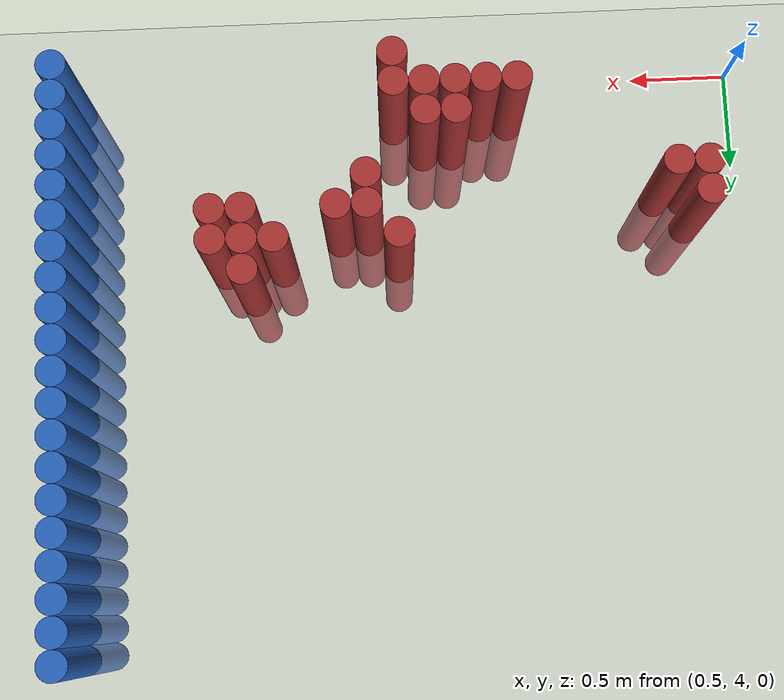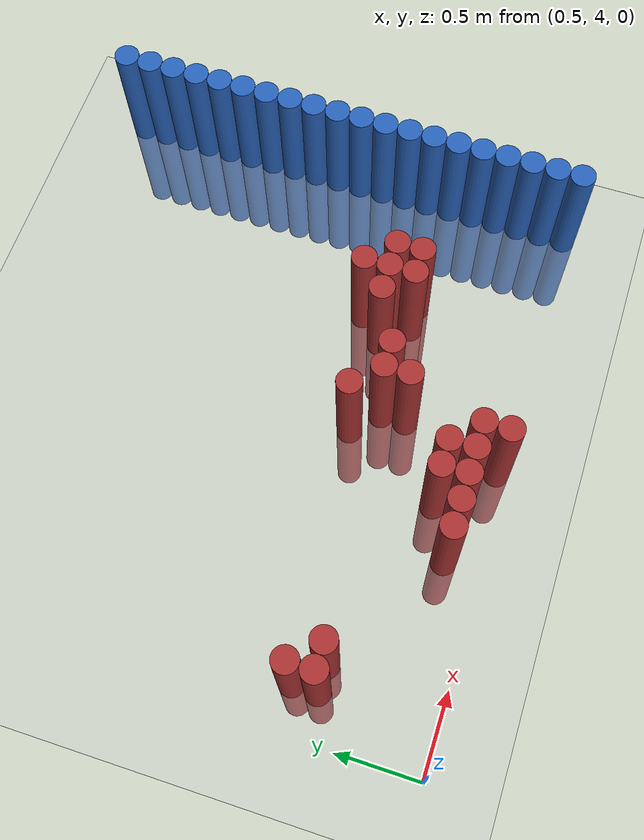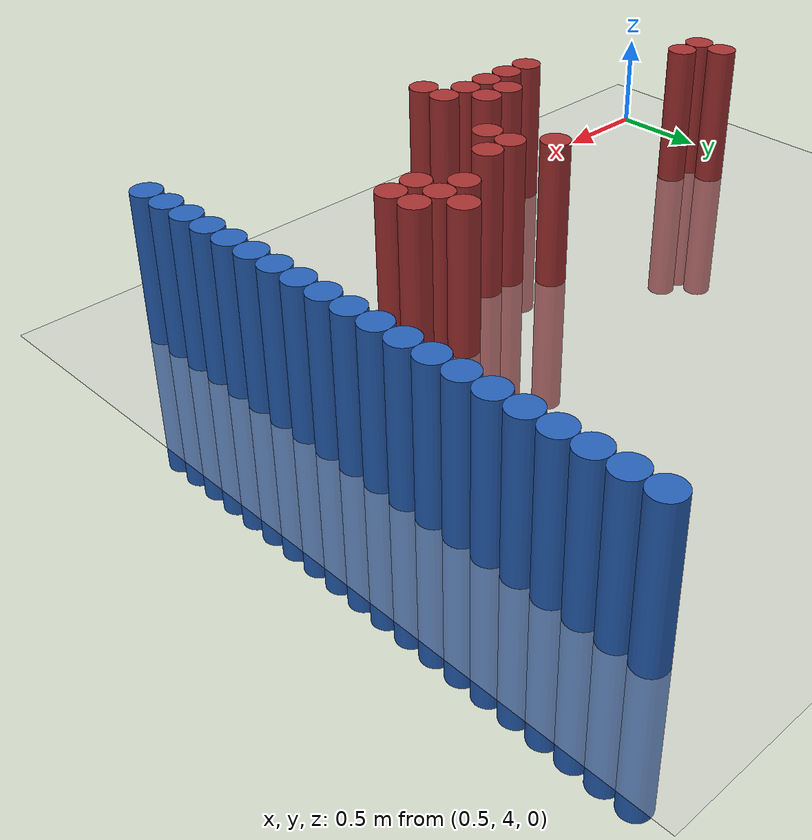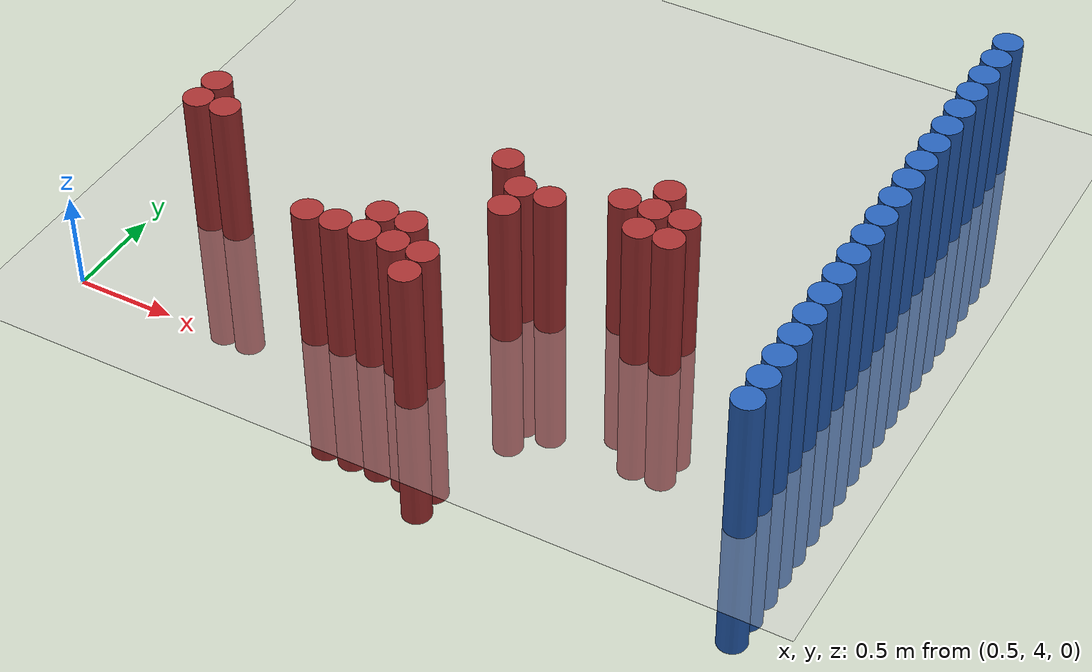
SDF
<sdf version="1.6">
 <world name="default">
  <model name="ground_plane">
   <static>1</static>
   <link name="link">
    <collision name="collision">
     <geometry><plane><normal>0 0 1</normal><size>100 100</size></plane></geometry>
     <surface><friction><ode><mu>100</mu><mu2>50</mu2></ode></friction></surface>
    </collision>
    <visual name="visual">
     <cast_shadows>0</cast_shadows>
     <geometry><plane><normal>0 0 1</normal><size>100 100</size></plane></geometry>
     <material>
      <script><uri>file://media/materials/scripts/gazebo.material</uri><name>Gazebo/Grey</name></script>
     </material>
    </visual>
   </link>
  </model>
  <model name="unit_cylinder_168">
   <static>1</static>
   <pose>3.925000 4.075000 0.000000 0.000000 0.000000 0.000000</pose>
   <link name="link">
    <inertial>
     <mass>1</mass>
     <inertia><ixx>0.145833</ixx><ixy>0</ixy><ixz>0</ixz><iyy>0.145833</iyy><iyz>0</iyz><izz>0.125</izz></inertia>
    </inertial>
    <collision name="collision">
     <geometry><cylinder><radius>0.075000</radius><length>1.5</length></cylinder></geometry>
    </collision>
    <visual name="visual">
     <geometry><cylinder><radius>0.075000</radius><length>1.5</length></cylinder></geometry>
     <material>
      <ambient>0.152000 0.379000 0.720000 1</ambient>
      <diffuse>0.152000 0.379000 0.720000 1</diffuse>
     </material>
     <material>
      <script><name>Gazebo/Grey</name><uri>file://media/materials/scripts/gazebo.material</uri></script>
     </material>
    </visual>
   </link>
  </model>
  <model name="unit_cylinder_170">
   <static>1</static>
   <pose>3.925000 4.225000 0.000000 0.000000 0.000000 0.000000</pose>
   <link name="link">
    <inertial>
     <mass>1</mass>
     <inertia><ixx>0.145833</ixx><ixy>0</ixy><ixz>0</ixz><iyy>0.145833</iyy><iyz>0</iyz><izz>0.125</izz></inertia>
    </inertial>
    <collision name="collision">
     <geometry><cylinder><radius>0.075000</radius><length>1.5</length></cylinder></geometry>
    </collision>
    <visual name="visual">
     <geometry><cylinder><radius>0.075000</radius><length>1.5</length></cylinder></geometry>
     <material>
      <ambient>0.152000 0.379000 0.720000 1</ambient>
      <diffuse>0.152000 0.379000 0.720000 1</diffuse>
     </material>
     <material>
      <script><name>Gazebo/Grey</name><uri>file://media/materials/scripts/gazebo.material</uri></script>
     </material>
    </visual>
   </link>
  </model>
  <model name="unit_cylinder_172">
   <static>1</static>
   <pose>3.925000 4.375000 0.000000 0.000000 0.000000 0.000000</pose>
   <link name="link">
    <inertial>
     <mass>1</mass>
     <inertia><ixx>0.145833</ixx><ixy>0</ixy><ixz>0</ixz><iyy>0.145833</iyy><iyz>0</iyz><izz>0.125</izz></inertia>
    </inertial>
    <collision name="collision">
     <geometry><cylinder><radius>0.075000</radius><length>1.5</length></cylinder></geometry>
    </collision>
    <visual name="visual">
     <geometry><cylinder><radius>0.075000</radius><length>1.5</length></cylinder></geometry>
     <material>
      <ambient>0.152000 0.379000 0.720000 1</ambient>
      <diffuse>0.152000 0.379000 0.720000 1</diffuse>
     </material>
     <material>
      <script><name>Gazebo/Grey</name><uri>file://media/materials/scripts/gazebo.material</uri></script>
     </material>
    </visual>
   </link>
  </model>
  <model name="unit_cylinder_174">
   <static>1</static>
   <pose>3.925000 4.525000 0.000000 0.000000 0.000000 0.000000</pose>
   <link name="link">
    <inertial>
     <mass>1</mass>
     <inertia><ixx>0.145833</ixx><ixy>0</ixy><ixz>0</ixz><iyy>0.145833</iyy><iyz>0</iyz><izz>0.125</izz></inertia>
    </inertial>
    <collision name="collision">
     <geometry><cylinder><radius>0.075000</radius><length>1.5</length></cylinder></geometry>
    </collision>
    <visual name="visual">
     <geometry><cylinder><radius>0.075000</radius><length>1.5</length></cylinder></geometry>
     <material>
      <ambient>0.152000 0.379000 0.720000 1</ambient>
      <diffuse>0.152000 0.379000 0.720000 1</diffuse>
     </material>
     <material>
      <script><name>Gazebo/Grey</name><uri>file://media/materials/scripts/gazebo.material</uri></script>
     </material>
    </visual>
   </link>
  </model>
  <model name="unit_cylinder_176">
   <static>1</static>
   <pose>3.925000 4.675000 0.000000 0.000000 0.000000 0.000000</pose>
   <link name="link">
    <inertial>
     <mass>1</mass>
     <inertia><ixx>0.145833</ixx><ixy>0</ixy><ixz>0</ixz><iyy>0.145833</iyy><iyz>0</iyz><izz>0.125</izz></inertia>
    </inertial>
    <collision name="collision">
     <geometry><cylinder><radius>0.075000</radius><length>1.5</length></cylinder></geometry>
    </collision>
    <visual name="visual">
     <geometry><cylinder><radius>0.075000</radius><length>1.5</length></cylinder></geometry>
     <material>
      <ambient>0.152000 0.379000 0.720000 1</ambient>
      <diffuse>0.152000 0.379000 0.720000 1</diffuse>
     </material>
     <material>
      <script><name>Gazebo/Grey</name><uri>file://media/materials/scripts/gazebo.material</uri></script>
     </material>
    </visual>
   </link>
  </model>
  <model name="unit_cylinder_178">
   <static>1</static>
   <pose>3.925000 4.825000 0.000000 0.000000 0.000000 0.000000</pose>
   <link name="link">
    <inertial>
     <mass>1</mass>
     <inertia><ixx>0.145833</ixx><ixy>0</ixy><ixz>0</ixz><iyy>0.145833</iyy><iyz>0</iyz><izz>0.125</izz></inertia>
    </inertial>
    <collision name="collision">
     <geometry><cylinder><radius>0.075000</radius><length>1.5</length></cylinder></geometry>
    </collision>
    <visual name="visual">
     <geometry><cylinder><radius>0.075000</radius><length>1.5</length></cylinder></geometry>
     <material>
      <ambient>0.152000 0.379000 0.720000 1</ambient>
      <diffuse>0.152000 0.379000 0.720000 1</diffuse>
     </material>
     <material>
      <script><name>Gazebo/Grey</name><uri>file://media/materials/scripts/gazebo.material</uri></script>
     </material>
    </visual>
   </link>
  </model>
  <model name="unit_cylinder_180">
   <static>1</static>
   <pose>3.925000 4.975000 0.000000 0.000000 0.000000 0.000000</pose>
   <link name="link">
    <inertial>
     <mass>1</mass>
     <inertia><ixx>0.145833</ixx><ixy>0</ixy><ixz>0</ixz><iyy>0.145833</iyy><iyz>0</iyz><izz>0.125</izz></inertia>
    </inertial>
    <collision name="collision">
     <geometry><cylinder><radius>0.075000</radius><length>1.5</length></cylinder></geometry>
    </collision>
    <visual name="visual">
     <geometry><cylinder><radius>0.075000</radius><length>1.5</length></cylinder></geometry>
     <material>
      <ambient>0.152000 0.379000 0.720000 1</ambient>
      <diffuse>0.152000 0.379000 0.720000 1</diffuse>
     </material>
     <material>
      <script><name>Gazebo/Grey</name><uri>file://media/materials/scripts/gazebo.material</uri></script>
     </material>
    </visual>
   </link>
  </model>
  <model name="unit_cylinder_182">
   <static>1</static>
   <pose>3.925000 5.125000 0.000000 0.000000 0.000000 0.000000</pose>
   <link name="link">
    <inertial>
     <mass>1</mass>
     <inertia><ixx>0.145833</ixx><ixy>0</ixy><ixz>0</ixz><iyy>0.145833</iyy><iyz>0</iyz><izz>0.125</izz></inertia>
    </inertial>
    <collision name="collision">
     <geometry><cylinder><radius>0.075000</radius><length>1.5</length></cylinder></geometry>
    </collision>
    <visual name="visual">
     <geometry><cylinder><radius>0.075000</radius><length>1.5</length></cylinder></geometry>
     <material>
      <ambient>0.152000 0.379000 0.720000 1</ambient>
      <diffuse>0.152000 0.379000 0.720000 1</diffuse>
     </material>
     <material>
      <script><name>Gazebo/Grey</name><uri>file://media/materials/scripts/gazebo.material</uri></script>
     </material>
    </visual>
   </link>
  </model>
  <model name="unit_cylinder_184">
   <static>1</static>
   <pose>3.925000 5.275000 0.000000 0.000000 0.000000 0.000000</pose>
   <link name="link">
    <inertial>
     <mass>1</mass>
     <inertia><ixx>0.145833</ixx><ixy>0</ixy><ixz>0</ixz><iyy>0.145833</iyy><iyz>0</iyz><izz>0.125</izz></inertia>
    </inertial>
    <collision name="collision">
     <geometry><cylinder><radius>0.075000</radius><length>1.5</length></cylinder></geometry>
    </collision>
    <visual name="visual">
     <geometry><cylinder><radius>0.075000</radius><length>1.5</length></cylinder></geometry>
     <material>
      <ambient>0.152000 0.379000 0.720000 1</ambient>
      <diffuse>0.152000 0.379000 0.720000 1</diffuse>
     </material>
     <material>
      <script><name>Gazebo/Grey</name><uri>file://media/materials/scripts/gazebo.material</uri></script>
     </material>
    </visual>
   </link>
  </model>
  <model name="unit_cylinder_186">
   <static>1</static>
   <pose>3.925000 5.425000 0.000000 0.000000 0.000000 0.000000</pose>
   <link name="link">
    <inertial>
     <mass>1</mass>
     <inertia><ixx>0.145833</ixx><ixy>0</ixy><ixz>0</ixz><iyy>0.145833</iyy><iyz>0</iyz><izz>0.125</izz></inertia>
    </inertial>
    <collision name="collision">
     <geometry><cylinder><radius>0.075000</radius><length>1.5</length></cylinder></geometry>
    </collision>
    <visual name="visual">
     <geometry><cylinder><radius>0.075000</radius><length>1.5</length></cylinder></geometry>
     <material>
      <ambient>0.152000 0.379000 0.720000 1</ambient>
      <diffuse>0.152000 0.379000 0.720000 1</diffuse>
     </material>
     <material>
      <script><name>Gazebo/Grey</name><uri>file://media/materials/scripts/gazebo.material</uri></script>
     </material>
    </visual>
   </link>
  </model>
  <model name="unit_cylinder_188">
   <static>1</static>
   <pose>3.925000 5.575000 0.000000 0.000000 0.000000 0.000000</pose>
   <link name="link">
    <inertial>
     <mass>1</mass>
     <inertia><ixx>0.145833</ixx><ixy>0</ixy><ixz>0</ixz><iyy>0.145833</iyy><iyz>0</iyz><izz>0.125</izz></inertia>
    </inertial>
    <collision name="collision">
     <geometry><cylinder><radius>0.075000</radius><length>1.5</length></cylinder></geometry>
    </collision>
    <visual name="visual">
     <geometry><cylinder><radius>0.075000</radius><length>1.5</length></cylinder></geometry>
     <material>
      <ambient>0.152000 0.379000 0.720000 1</ambient>
      <diffuse>0.152000 0.379000 0.720000 1</diffuse>
     </material>
     <material>
      <script><name>Gazebo/Grey</name><uri>file://media/materials/scripts/gazebo.material</uri></script>
     </material>
    </visual>
   </link>
  </model>
  <model name="unit_cylinder_190">
   <static>1</static>
   <pose>3.925000 5.725000 0.000000 0.000000 0.000000 0.000000</pose>
   <link name="link">
    <inertial>
     <mass>1</mass>
     <inertia><ixx>0.145833</ixx><ixy>0</ixy><ixz>0</ixz><iyy>0.145833</iyy><iyz>0</iyz><izz>0.125</izz></inertia>
    </inertial>
    <collision name="collision">
     <geometry><cylinder><radius>0.075000</radius><length>1.5</length></cylinder></geometry>
    </collision>
    <visual name="visual">
     <geometry><cylinder><radius>0.075000</radius><length>1.5</length></cylinder></geometry>
     <material>
      <ambient>0.152000 0.379000 0.720000 1</ambient>
      <diffuse>0.152000 0.379000 0.720000 1</diffuse>
     </material>
     <material>
      <script><name>Gazebo/Grey</name><uri>file://media/materials/scripts/gazebo.material</uri></script>
     </material>
    </visual>
   </link>
  </model>
  <model name="unit_cylinder_192">
   <static>1</static>
   <pose>3.925000 5.875000 0.000000 0.000000 0.000000 0.000000</pose>
   <link name="link">
    <inertial>
     <mass>1</mass>
     <inertia><ixx>0.145833</ixx><ixy>0</ixy><ixz>0</ixz><iyy>0.145833</iyy><iyz>0</iyz><izz>0.125</izz></inertia>
    </inertial>
    <collision name="collision">
     <geometry><cylinder><radius>0.075000</radius><length>1.5</length></cylinder></geometry>
    </collision>
    <visual name="visual">
     <geometry><cylinder><radius>0.075000</radius><length>1.5</length></cylinder></geometry>
     <material>
      <ambient>0.152000 0.379000 0.720000 1</ambient>
      <diffuse>0.152000 0.379000 0.720000 1</diffuse>
     </material>
     <material>
      <script><name>Gazebo/Grey</name><uri>file://media/materials/scripts/gazebo.material</uri></script>
     </material>
    </visual>
   </link>
  </model>
  <model name="unit_cylinder_194">
   <static>1</static>
   <pose>3.925000 6.025000 0.000000 0.000000 0.000000 0.000000</pose>
   <link name="link">
    <inertial>
     <mass>1</mass>
     <inertia><ixx>0.145833</ixx><ixy>0</ixy><ixz>0</ixz><iyy>0.145833</iyy><iyz>0</iyz><izz>0.125</izz></inertia>
    </inertial>
    <collision name="collision">
     <geometry><cylinder><radius>0.075000</radius><length>1.5</length></cylinder></geometry>
    </collision>
    <visual name="visual">
     <geometry><cylinder><radius>0.075000</radius><length>1.5</length></cylinder></geometry>
     <material>
      <ambient>0.152000 0.379000 0.720000 1</ambient>
      <diffuse>0.152000 0.379000 0.720000 1</diffuse>
     </material>
     <material>
      <script><name>Gazebo/Grey</name><uri>file://media/materials/scripts/gazebo.material</uri></script>
     </material>
    </visual>
   </link>
  </model>
  <model name="unit_cylinder_196">
   <static>1</static>
   <pose>3.925000 6.175000 0.000000 0.000000 0.000000 0.000000</pose>
   <link name="link">
    <inertial>
     <mass>1</mass>
     <inertia><ixx>0.145833</ixx><ixy>0</ixy><ixz>0</ixz><iyy>0.145833</iyy><iyz>0</iyz><izz>0.125</izz></inertia>
    </inertial>
    <collision name="collision">
     <geometry><cylinder><radius>0.075000</radius><length>1.5</length></cylinder></geometry>
    </collision>
    <visual name="visual">
     <geometry><cylinder><radius>0.075000</radius><length>1.5</length></cylinder></geometry>
     <material>
      <ambient>0.152000 0.379000 0.720000 1</ambient>
      <diffuse>0.152000 0.379000 0.720000 1</diffuse>
     </material>
     <material>
      <script><name>Gazebo/Grey</name><uri>file://media/materials/scripts/gazebo.material</uri></script>
     </material>
    </visual>
   </link>
  </model>
  <model name="unit_cylinder_198">
   <static>1</static>
   <pose>3.925000 6.325000 0.000000 0.000000 0.000000 0.000000</pose>
   <link name="link">
    <inertial>
     <mass>1</mass>
     <inertia><ixx>0.145833</ixx><ixy>0</ixy><ixz>0</ixz><iyy>0.145833</iyy><iyz>0</iyz><izz>0.125</izz></inertia>
    </inertial>
    <collision name="collision">
     <geometry><cylinder><radius>0.075000</radius><length>1.5</length></cylinder></geometry>
    </collision>
    <visual name="visual">
     <geometry><cylinder><radius>0.075000</radius><length>1.5</length></cylinder></geometry>
     <material>
      <ambient>0.152000 0.379000 0.720000 1</ambient>
      <diffuse>0.152000 0.379000 0.720000 1</diffuse>
     </material>
     <material>
      <script><name>Gazebo/Grey</name><uri>file://media/materials/scripts/gazebo.material</uri></script>
     </material>
    </visual>
   </link>
  </model>
  <model name="unit_cylinder_200">
   <static>1</static>
   <pose>3.925000 6.475000 0.000000 0.000000 0.000000 0.000000</pose>
   <link name="link">
    <inertial>
     <mass>1</mass>
     <inertia><ixx>0.145833</ixx><ixy>0</ixy><ixz>0</ixz><iyy>0.145833</iyy><iyz>0</iyz><izz>0.125</izz></inertia>
    </inertial>
    <collision name="collision">
     <geometry><cylinder><radius>0.075000</radius><length>1.5</length></cylinder></geometry>
    </collision>
    <visual name="visual">
     <geometry><cylinder><radius>0.075000</radius><length>1.5</length></cylinder></geometry>
     <material>
      <ambient>0.152000 0.379000 0.720000 1</ambient>
      <diffuse>0.152000 0.379000 0.720000 1</diffuse>
     </material>
     <material>
      <script><name>Gazebo/Grey</name><uri>file://media/materials/scripts/gazebo.material</uri></script>
     </material>
    </visual>
   </link>
  </model>
  <model name="unit_cylinder_202">
   <static>1</static>
   <pose>3.925000 6.625000 0.000000 0.000000 0.000000 0.000000</pose>
   <link name="link">
    <inertial>
     <mass>1</mass>
     <inertia><ixx>0.145833</ixx><ixy>0</ixy><ixz>0</ixz><iyy>0.145833</iyy><iyz>0</iyz><izz>0.125</izz></inertia>
    </inertial>
    <collision name="collision">
     <geometry><cylinder><radius>0.075000</radius><length>1.5</length></cylinder></geometry>
    </collision>
    <visual name="visual">
     <geometry><cylinder><radius>0.075000</radius><length>1.5</length></cylinder></geometry>
     <material>
      <ambient>0.152000 0.379000 0.720000 1</ambient>
      <diffuse>0.152000 0.379000 0.720000 1</diffuse>
     </material>
     <material>
      <script><name>Gazebo/Grey</name><uri>file://media/materials/scripts/gazebo.material</uri></script>
     </material>
    </visual>
   </link>
  </model>
  <model name="unit_cylinder_204">
   <static>1</static>
   <pose>3.925000 6.775000 0.000000 0.000000 0.000000 0.000000</pose>
   <link name="link">
    <inertial>
     <mass>1</mass>
     <inertia><ixx>0.145833</ixx><ixy>0</ixy><ixz>0</ixz><iyy>0.145833</iyy><iyz>0</iyz><izz>0.125</izz></inertia>
    </inertial>
    <collision name="collision">
     <geometry><cylinder><radius>0.075000</radius><length>1.5</length></cylinder></geometry>
    </collision>
    <visual name="visual">
     <geometry><cylinder><radius>0.075000</radius><length>1.5</length></cylinder></geometry>
     <material>
      <ambient>0.152000 0.379000 0.720000 1</ambient>
      <diffuse>0.152000 0.379000 0.720000 1</diffuse>
     </material>
     <material>
      <script><name>Gazebo/Grey</name><uri>file://media/materials/scripts/gazebo.material</uri></script>
     </material>
    </visual>
   </link>
  </model>
  <model name="unit_cylinder_206">
   <static>1</static>
   <pose>3.925000 6.925000 0.000000 0.000000 0.000000 0.000000</pose>
   <link name="link">
    <inertial>
     <mass>1</mass>
     <inertia><ixx>0.145833</ixx><ixy>0</ixy><ixz>0</ixz><iyy>0.145833</iyy><iyz>0</iyz><izz>0.125</izz></inertia>
    </inertial>
    <collision name="collision">
     <geometry><cylinder><radius>0.075000</radius><length>1.5</length></cylinder></geometry>
    </collision>
    <visual name="visual">
     <geometry><cylinder><radius>0.075000</radius><length>1.5</length></cylinder></geometry>
     <material>
      <ambient>0.152000 0.379000 0.720000 1</ambient>
      <diffuse>0.152000 0.379000 0.720000 1</diffuse>
     </material>
     <material>
      <script><name>Gazebo/Grey</name><uri>file://media/materials/scripts/gazebo.material</uri></script>
     </material>
    </visual>
   </link>
  </model>
  <model name="unit_cylinder_382">
   <static>1</static>
   <pose>0.775000 4.675000 0.000000 0.000000 0.000000 0.000000</pose>
   <link name="link">
    <inertial>
     <mass>1</mass>
     <inertia><ixx>0.145833</ixx><ixy>0</ixy><ixz>0</ixz><iyy>0.145833</iyy><iyz>0</iyz><izz>0.125</izz></inertia>
    </inertial>
    <collision name="collision">
     <geometry><cylinder><radius>0.075000</radius><length>1.5</length></cylinder></geometry>
    </collision>
    <visual name="visual">
     <geometry><cylinder><radius>0.075000</radius><length>1.5</length></cylinder></geometry>
     <material>
      <ambient>0.648000 0.192000 0.192000 1</ambient>
      <diffuse>0.648000 0.192000 0.192000 1</diffuse>
     </material>
     <material>
      <script><name>Gazebo/Grey</name><uri>file://media/materials/scripts/gazebo.material</uri></script>
     </material>
    </visual>
   </link>
  </model>
  <model name="unit_cylinder_383">
   <static>1</static>
   <pose>0.775000 4.825000 0.000000 0.000000 0.000000 0.000000</pose>
   <link name="link">
    <inertial>
     <mass>1</mass>
     <inertia><ixx>0.145833</ixx><ixy>0</ixy><ixz>0</ixz><iyy>0.145833</iyy><iyz>0</iyz><izz>0.125</izz></inertia>
    </inertial>
    <collision name="collision">
     <geometry><cylinder><radius>0.075000</radius><length>1.5</length></cylinder></geometry>
    </collision>
    <visual name="visual">
     <geometry><cylinder><radius>0.075000</radius><length>1.5</length></cylinder></geometry>
     <material>
      <ambient>0.648000 0.192000 0.192000 1</ambient>
      <diffuse>0.648000 0.192000 0.192000 1</diffuse>
     </material>
     <material>
      <script><name>Gazebo/Grey</name><uri>file://media/materials/scripts/gazebo.material</uri></script>
     </material>
    </visual>
   </link>
  </model>
  <model name="unit_cylinder_388">
   <static>1</static>
   <pose>0.925000 4.675000 0.000000 0.000000 0.000000 0.000000</pose>
   <link name="link">
    <inertial>
     <mass>1</mass>
     <inertia><ixx>0.145833</ixx><ixy>0</ixy><ixz>0</ixz><iyy>0.145833</iyy><iyz>0</iyz><izz>0.125</izz></inertia>
    </inertial>
    <collision name="collision">
     <geometry><cylinder><radius>0.075000</radius><length>1.5</length></cylinder></geometry>
    </collision>
    <visual name="visual">
     <geometry><cylinder><radius>0.075000</radius><length>1.5</length></cylinder></geometry>
     <material>
      <ambient>0.648000 0.192000 0.192000 1</ambient>
      <diffuse>0.648000 0.192000 0.192000 1</diffuse>
     </material>
     <material>
      <script><name>Gazebo/Grey</name><uri>file://media/materials/scripts/gazebo.material</uri></script>
     </material>
    </visual>
   </link>
  </model>
  <model name="unit_cylinder_404">
   <static>1</static>
   <pose>1.675000 4.225000 0.000000 0.000000 0.000000 0.000000</pose>
   <link name="link">
    <inertial>
     <mass>1</mass>
     <inertia><ixx>0.145833</ixx><ixy>0</ixy><ixz>0</ixz><iyy>0.145833</iyy><iyz>0</iyz><izz>0.125</izz></inertia>
    </inertial>
    <collision name="collision">
     <geometry><cylinder><radius>0.075000</radius><length>1.5</length></cylinder></geometry>
    </collision>
    <visual name="visual">
     <geometry><cylinder><radius>0.075000</radius><length>1.5</length></cylinder></geometry>
     <material>
      <ambient>0.648000 0.192000 0.192000 1</ambient>
      <diffuse>0.648000 0.192000 0.192000 1</diffuse>
     </material>
     <material>
      <script><name>Gazebo/Grey</name><uri>file://media/materials/scripts/gazebo.material</uri></script>
     </material>
    </visual>
   </link>
  </model>
  <model name="unit_cylinder_412">
   <static>1</static>
   <pose>1.825000 4.225000 0.000000 0.000000 0.000000 0.000000</pose>
   <link name="link">
    <inertial>
     <mass>1</mass>
     <inertia><ixx>0.145833</ixx><ixy>0</ixy><ixz>0</ixz><iyy>0.145833</iyy><iyz>0</iyz><izz>0.125</izz></inertia>
    </inertial>
    <collision name="collision">
     <geometry><cylinder><radius>0.075000</radius><length>1.5</length></cylinder></geometry>
    </collision>
    <visual name="visual">
     <geometry><cylinder><radius>0.075000</radius><length>1.5</length></cylinder></geometry>
     <material>
      <ambient>0.648000 0.192000 0.192000 1</ambient>
      <diffuse>0.648000 0.192000 0.192000 1</diffuse>
     </material>
     <material>
      <script><name>Gazebo/Grey</name><uri>file://media/materials/scripts/gazebo.material</uri></script>
     </material>
    </visual>
   </link>
  </model>
  <model name="unit_cylinder_419">
   <static>1</static>
   <pose>1.975000 4.225000 0.000000 0.000000 0.000000 0.000000</pose>
   <link name="link">
    <inertial>
     <mass>1</mass>
     <inertia><ixx>0.145833</ixx><ixy>0</ixy><ixz>0</ixz><iyy>0.145833</iyy><iyz>0</iyz><izz>0.125</izz></inertia>
    </inertial>
    <collision name="collision">
     <geometry><cylinder><radius>0.075000</radius><length>1.5</length></cylinder></geometry>
    </collision>
    <visual name="visual">
     <geometry><cylinder><radius>0.075000</radius><length>1.5</length></cylinder></geometry>
     <material>
      <ambient>0.648000 0.192000 0.192000 1</ambient>
      <diffuse>0.648000 0.192000 0.192000 1</diffuse>
     </material>
     <material>
      <script><name>Gazebo/Grey</name><uri>file://media/materials/scripts/gazebo.material</uri></script>
     </material>
    </visual>
   </link>
  </model>
  <model name="unit_cylinder_420">
   <static>1</static>
   <pose>1.975000 4.375000 0.000000 0.000000 0.000000 0.000000</pose>
   <link name="link">
    <inertial>
     <mass>1</mass>
     <inertia><ixx>0.145833</ixx><ixy>0</ixy><ixz>0</ixz><iyy>0.145833</iyy><iyz>0</iyz><izz>0.125</izz></inertia>
    </inertial>
    <collision name="collision">
     <geometry><cylinder><radius>0.075000</radius><length>1.5</length></cylinder></geometry>
    </collision>
    <visual name="visual">
     <geometry><cylinder><radius>0.075000</radius><length>1.5</length></cylinder></geometry>
     <material>
      <ambient>0.648000 0.192000 0.192000 1</ambient>
      <diffuse>0.648000 0.192000 0.192000 1</diffuse>
     </material>
     <material>
      <script><name>Gazebo/Grey</name><uri>file://media/materials/scripts/gazebo.material</uri></script>
     </material>
    </visual>
   </link>
  </model>
  <model name="unit_cylinder_426">
   <static>1</static>
   <pose>2.125000 4.225000 0.000000 0.000000 0.000000 0.000000</pose>
   <link name="link">
    <inertial>
     <mass>1</mass>
     <inertia><ixx>0.145833</ixx><ixy>0</ixy><ixz>0</ixz><iyy>0.145833</iyy><iyz>0</iyz><izz>0.125</izz></inertia>
    </inertial>
    <collision name="collision">
     <geometry><cylinder><radius>0.075000</radius><length>1.5</length></cylinder></geometry>
    </collision>
    <visual name="visual">
     <geometry><cylinder><radius>0.075000</radius><length>1.5</length></cylinder></geometry>
     <material>
      <ambient>0.648000 0.192000 0.192000 1</ambient>
      <diffuse>0.648000 0.192000 0.192000 1</diffuse>
     </material>
     <material>
      <script><name>Gazebo/Grey</name><uri>file://media/materials/scripts/gazebo.material</uri></script>
     </material>
    </visual>
   </link>
  </model>
  <model name="unit_cylinder_427">
   <static>1</static>
   <pose>2.125000 4.375000 0.000000 0.000000 0.000000 0.000000</pose>
   <link name="link">
    <inertial>
     <mass>1</mass>
     <inertia><ixx>0.145833</ixx><ixy>0</ixy><ixz>0</ixz><iyy>0.145833</iyy><iyz>0</iyz><izz>0.125</izz></inertia>
    </inertial>
    <collision name="collision">
     <geometry><cylinder><radius>0.075000</radius><length>1.5</length></cylinder></geometry>
    </collision>
    <visual name="visual">
     <geometry><cylinder><radius>0.075000</radius><length>1.5</length></cylinder></geometry>
     <material>
      <ambient>0.648000 0.192000 0.192000 1</ambient>
      <diffuse>0.648000 0.192000 0.192000 1</diffuse>
     </material>
     <material>
      <script><name>Gazebo/Grey</name><uri>file://media/materials/scripts/gazebo.material</uri></script>
     </material>
    </visual>
   </link>
  </model>
  <model name="unit_cylinder_432">
   <static>1</static>
   <pose>2.275000 4.075000 0.000000 0.000000 0.000000 0.000000</pose>
   <link name="link">
    <inertial>
     <mass>1</mass>
     <inertia><ixx>0.145833</ixx><ixy>0</ixy><ixz>0</ixz><iyy>0.145833</iyy><iyz>0</iyz><izz>0.125</izz></inertia>
    </inertial>
    <collision name="collision">
     <geometry><cylinder><radius>0.075000</radius><length>1.5</length></cylinder></geometry>
    </collision>
    <visual name="visual">
     <geometry><cylinder><radius>0.075000</radius><length>1.5</length></cylinder></geometry>
     <material>
      <ambient>0.648000 0.192000 0.192000 1</ambient>
      <diffuse>0.648000 0.192000 0.192000 1</diffuse>
     </material>
     <material>
      <script><name>Gazebo/Grey</name><uri>file://media/materials/scripts/gazebo.material</uri></script>
     </material>
    </visual>
   </link>
  </model>
  <model name="unit_cylinder_433">
   <static>1</static>
   <pose>2.275000 4.225000 0.000000 0.000000 0.000000 0.000000</pose>
   <link name="link">
    <inertial>
     <mass>1</mass>
     <inertia><ixx>0.145833</ixx><ixy>0</ixy><ixz>0</ixz><iyy>0.145833</iyy><iyz>0</iyz><izz>0.125</izz></inertia>
    </inertial>
    <collision name="collision">
     <geometry><cylinder><radius>0.075000</radius><length>1.5</length></cylinder></geometry>
    </collision>
    <visual name="visual">
     <geometry><cylinder><radius>0.075000</radius><length>1.5</length></cylinder></geometry>
     <material>
      <ambient>0.648000 0.192000 0.192000 1</ambient>
      <diffuse>0.648000 0.192000 0.192000 1</diffuse>
     </material>
     <material>
      <script><name>Gazebo/Grey</name><uri>file://media/materials/scripts/gazebo.material</uri></script>
     </material>
    </visual>
   </link>
  </model>
  <model name="unit_cylinder_434">
   <static>1</static>
   <pose>2.275000 4.975000 0.000000 0.000000 0.000000 0.000000</pose>
   <link name="link">
    <inertial>
     <mass>1</mass>
     <inertia><ixx>0.145833</ixx><ixy>0</ixy><ixz>0</ixz><iyy>0.145833</iyy><iyz>0</iyz><izz>0.125</izz></inertia>
    </inertial>
    <collision name="collision">
     <geometry><cylinder><radius>0.075000</radius><length>1.5</length></cylinder></geometry>
    </collision>
    <visual name="visual">
     <geometry><cylinder><radius>0.075000</radius><length>1.5</length></cylinder></geometry>
     <material>
      <ambient>0.648000 0.192000 0.192000 1</ambient>
      <diffuse>0.648000 0.192000 0.192000 1</diffuse>
     </material>
     <material>
      <script><name>Gazebo/Grey</name><uri>file://media/materials/scripts/gazebo.material</uri></script>
     </material>
    </visual>
   </link>
  </model>
  <model name="unit_cylinder_439">
   <static>1</static>
   <pose>2.425000 4.675000 0.000000 0.000000 0.000000 0.000000</pose>
   <link name="link">
    <inertial>
     <mass>1</mass>
     <inertia><ixx>0.145833</ixx><ixy>0</ixy><ixz>0</ixz><iyy>0.145833</iyy><iyz>0</iyz><izz>0.125</izz></inertia>
    </inertial>
    <collision name="collision">
     <geometry><cylinder><radius>0.075000</radius><length>1.5</length></cylinder></geometry>
    </collision>
    <visual name="visual">
     <geometry><cylinder><radius>0.075000</radius><length>1.5</length></cylinder></geometry>
     <material>
      <ambient>0.648000 0.192000 0.192000 1</ambient>
      <diffuse>0.648000 0.192000 0.192000 1</diffuse>
     </material>
     <material>
      <script><name>Gazebo/Grey</name><uri>file://media/materials/scripts/gazebo.material</uri></script>
     </material>
    </visual>
   </link>
  </model>
  <model name="unit_cylinder_440">
   <static>1</static>
   <pose>2.425000 4.825000 0.000000 0.000000 0.000000 0.000000</pose>
   <link name="link">
    <inertial>
     <mass>1</mass>
     <inertia><ixx>0.145833</ixx><ixy>0</ixy><ixz>0</ixz><iyy>0.145833</iyy><iyz>0</iyz><izz>0.125</izz></inertia>
    </inertial>
    <collision name="collision">
     <geometry><cylinder><radius>0.075000</radius><length>1.5</length></cylinder></geometry>
    </collision>
    <visual name="visual">
     <geometry><cylinder><radius>0.075000</radius><length>1.5</length></cylinder></geometry>
     <material>
      <ambient>0.648000 0.192000 0.192000 1</ambient>
      <diffuse>0.648000 0.192000 0.192000 1</diffuse>
     </material>
     <material>
      <script><name>Gazebo/Grey</name><uri>file://media/materials/scripts/gazebo.material</uri></script>
     </material>
    </visual>
   </link>
  </model>
  <model name="unit_cylinder_445">
   <static>1</static>
   <pose>2.575000 4.825000 0.000000 0.000000 0.000000 0.000000</pose>
   <link name="link">
    <inertial>
     <mass>1</mass>
     <inertia><ixx>0.145833</ixx><ixy>0</ixy><ixz>0</ixz><iyy>0.145833</iyy><iyz>0</iyz><izz>0.125</izz></inertia>
    </inertial>
    <collision name="collision">
     <geometry><cylinder><radius>0.075000</radius><length>1.5</length></cylinder></geometry>
    </collision>
    <visual name="visual">
     <geometry><cylinder><radius>0.075000</radius><length>1.5</length></cylinder></geometry>
     <material>
      <ambient>0.648000 0.192000 0.192000 1</ambient>
      <diffuse>0.648000 0.192000 0.192000 1</diffuse>
     </material>
     <material>
      <script><name>Gazebo/Grey</name><uri>file://media/materials/scripts/gazebo.material</uri></script>
     </material>
    </visual>
   </link>
  </model>
  <model name="unit_cylinder_450">
   <static>1</static>
   <pose>2.875000 4.975000 0.000000 0.000000 0.000000 0.000000</pose>
   <link name="link">
    <inertial>
     <mass>1</mass>
     <inertia><ixx>0.145833</ixx><ixy>0</ixy><ixz>0</ixz><iyy>0.145833</iyy><iyz>0</iyz><izz>0.125</izz></inertia>
    </inertial>
    <collision name="collision">
     <geometry><cylinder><radius>0.075000</radius><length>1.5</length></cylinder></geometry>
    </collision>
    <visual name="visual">
     <geometry><cylinder><radius>0.075000</radius><length>1.5</length></cylinder></geometry>
     <material>
      <ambient>0.648000 0.192000 0.192000 1</ambient>
      <diffuse>0.648000 0.192000 0.192000 1</diffuse>
     </material>
     <material>
      <script><name>Gazebo/Grey</name><uri>file://media/materials/scripts/gazebo.material</uri></script>
     </material>
    </visual>
   </link>
  </model>
  <model name="unit_cylinder_454">
   <static>1</static>
   <pose>3.025000 4.825000 0.000000 0.000000 0.000000 0.000000</pose>
   <link name="link">
    <inertial>
     <mass>1</mass>
     <inertia><ixx>0.145833</ixx><ixy>0</ixy><ixz>0</ixz><iyy>0.145833</iyy><iyz>0</iyz><izz>0.125</izz></inertia>
    </inertial>
    <collision name="collision">
     <geometry><cylinder><radius>0.075000</radius><length>1.5</length></cylinder></geometry>
    </collision>
    <visual name="visual">
     <geometry><cylinder><radius>0.075000</radius><length>1.5</length></cylinder></geometry>
     <material>
      <ambient>0.648000 0.192000 0.192000 1</ambient>
      <diffuse>0.648000 0.192000 0.192000 1</diffuse>
     </material>
     <material>
      <script><name>Gazebo/Grey</name><uri>file://media/materials/scripts/gazebo.material</uri></script>
     </material>
    </visual>
   </link>
  </model>
  <model name="unit_cylinder_455">
   <static>1</static>
   <pose>3.025000 4.975000 0.000000 0.000000 0.000000 0.000000</pose>
   <link name="link">
    <inertial>
     <mass>1</mass>
     <inertia><ixx>0.145833</ixx><ixy>0</ixy><ixz>0</ixz><iyy>0.145833</iyy><iyz>0</iyz><izz>0.125</izz></inertia>
    </inertial>
    <collision name="collision">
     <geometry><cylinder><radius>0.075000</radius><length>1.5</length></cylinder></geometry>
    </collision>
    <visual name="visual">
     <geometry><cylinder><radius>0.075000</radius><length>1.5</length></cylinder></geometry>
     <material>
      <ambient>0.648000 0.192000 0.192000 1</ambient>
      <diffuse>0.648000 0.192000 0.192000 1</diffuse>
     </material>
     <material>
      <script><name>Gazebo/Grey</name><uri>file://media/materials/scripts/gazebo.material</uri></script>
     </material>
    </visual>
   </link>
  </model>
  <model name="unit_cylinder_456">
   <static>1</static>
   <pose>3.025000 5.125000 0.000000 0.000000 0.000000 0.000000</pose>
   <link name="link">
    <inertial>
     <mass>1</mass>
     <inertia><ixx>0.145833</ixx><ixy>0</ixy><ixz>0</ixz><iyy>0.145833</iyy><iyz>0</iyz><izz>0.125</izz></inertia>
    </inertial>
    <collision name="collision">
     <geometry><cylinder><radius>0.075000</radius><length>1.5</length></cylinder></geometry>
    </collision>
    <visual name="visual">
     <geometry><cylinder><radius>0.075000</radius><length>1.5</length></cylinder></geometry>
     <material>
      <ambient>0.648000 0.192000 0.192000 1</ambient>
      <diffuse>0.648000 0.192000 0.192000 1</diffuse>
     </material>
     <material>
      <script><name>Gazebo/Grey</name><uri>file://media/materials/scripts/gazebo.material</uri></script>
     </material>
    </visual>
   </link>
  </model>
  <model name="unit_cylinder_462">
   <static>1</static>
   <pose>3.175000 4.825000 0.000000 0.000000 0.000000 0.000000</pose>
   <link name="link">
    <inertial>
     <mass>1</mass>
     <inertia><ixx>0.145833</ixx><ixy>0</ixy><ixz>0</ixz><iyy>0.145833</iyy><iyz>0</iyz><izz>0.125</izz></inertia>
    </inertial>
    <collision name="collision">
     <geometry><cylinder><radius>0.075000</radius><length>1.5</length></cylinder></geometry>
    </collision>
    <visual name="visual">
     <geometry><cylinder><radius>0.075000</radius><length>1.5</length></cylinder></geometry>
     <material>
      <ambient>0.648000 0.192000 0.192000 1</ambient>
      <diffuse>0.648000 0.192000 0.192000 1</diffuse>
     </material>
     <material>
      <script><name>Gazebo/Grey</name><uri>file://media/materials/scripts/gazebo.material</uri></script>
     </material>
    </visual>
   </link>
  </model>
  <model name="unit_cylinder_463">
   <static>1</static>
   <pose>3.175000 4.975000 0.000000 0.000000 0.000000 0.000000</pose>
   <link name="link">
    <inertial>
     <mass>1</mass>
     <inertia><ixx>0.145833</ixx><ixy>0</ixy><ixz>0</ixz><iyy>0.145833</iyy><iyz>0</iyz><izz>0.125</izz></inertia>
    </inertial>
    <collision name="collision">
     <geometry><cylinder><radius>0.075000</radius><length>1.5</length></cylinder></geometry>
    </collision>
    <visual name="visual">
     <geometry><cylinder><radius>0.075000</radius><length>1.5</length></cylinder></geometry>
     <material>
      <ambient>0.648000 0.192000 0.192000 1</ambient>
      <diffuse>0.648000 0.192000 0.192000 1</diffuse>
     </material>
     <material>
      <script><name>Gazebo/Grey</name><uri>file://media/materials/scripts/gazebo.material</uri></script>
     </material>
    </visual>
   </link>
  </model>
  <model name="unit_cylinder_542">
   <static>1</static>
   <pose>3.925000 4.075000 0.000000 0.000000 0.000000 0.000000</pose>
   <link name="link">
    <inertial>
     <mass>1</mass>
     <inertia><ixx>0.145833</ixx><ixy>0</ixy><ixz>0</ixz><iyy>0.145833</iyy><iyz>0</iyz><izz>0.125</izz></inertia>
    </inertial>
    <collision name="collision">
     <geometry><cylinder><radius>0.075000</radius><length>1.5</length></cylinder></geometry>
    </collision>
    <visual name="visual">
     <geometry><cylinder><radius>0.075000</radius><length>1.5</length></cylinder></geometry>
     <material>
      <ambient>0.152000 0.379000 0.720000 1</ambient>
      <diffuse>0.152000 0.379000 0.720000 1</diffuse>
     </material>
     <material>
      <script><name>Gazebo/Grey</name><uri>file://media/materials/scripts/gazebo.material</uri></script>
     </material>
    </visual>
   </link>
  </model>
  <model name="unit_cylinder_543">
   <static>1</static>
   <pose>3.925000 4.225000 0.000000 0.000000 0.000000 0.000000</pose>
   <link name="link">
    <inertial>
     <mass>1</mass>
     <inertia><ixx>0.145833</ixx><ixy>0</ixy><ixz>0</ixz><iyy>0.145833</iyy><iyz>0</iyz><izz>0.125</izz></inertia>
    </inertial>
    <collision name="collision">
     <geometry><cylinder><radius>0.075000</radius><length>1.5</length></cylinder></geometry>
    </collision>
    <visual name="visual">
     <geometry><cylinder><radius>0.075000</radius><length>1.5</length></cylinder></geometry>
     <material>
      <ambient>0.152000 0.379000 0.720000 1</ambient>
      <diffuse>0.152000 0.379000 0.720000 1</diffuse>
     </material>
     <material>
      <script><name>Gazebo/Grey</name><uri>file://media/materials/scripts/gazebo.material</uri></script>
     </material>
    </visual>
   </link>
  </model>
  <model name="unit_cylinder_544">
   <static>1</static>
   <pose>3.925000 4.375000 0.000000 0.000000 0.000000 0.000000</pose>
   <link name="link">
    <inertial>
     <mass>1</mass>
     <inertia><ixx>0.145833</ixx><ixy>0</ixy><ixz>0</ixz><iyy>0.145833</iyy><iyz>0</iyz><izz>0.125</izz></inertia>
    </inertial>
    <collision name="collision">
     <geometry><cylinder><radius>0.075000</radius><length>1.5</length></cylinder></geometry>
    </collision>
    <visual name="visual">
     <geometry><cylinder><radius>0.075000</radius><length>1.5</length></cylinder></geometry>
     <material>
      <ambient>0.152000 0.379000 0.720000 1</ambient>
      <diffuse>0.152000 0.379000 0.720000 1</diffuse>
     </material>
     <material>
      <script><name>Gazebo/Grey</name><uri>file://media/materials/scripts/gazebo.material</uri></script>
     </material>
    </visual>
   </link>
  </model>
  <model name="unit_cylinder_545">
   <static>1</static>
   <pose>3.925000 4.525000 0.000000 0.000000 0.000000 0.000000</pose>
   <link name="link">
    <inertial>
     <mass>1</mass>
     <inertia><ixx>0.145833</ixx><ixy>0</ixy><ixz>0</ixz><iyy>0.145833</iyy><iyz>0</iyz><izz>0.125</izz></inertia>
    </inertial>
    <collision name="collision">
     <geometry><cylinder><radius>0.075000</radius><length>1.5</length></cylinder></geometry>
    </collision>
    <visual name="visual">
     <geometry><cylinder><radius>0.075000</radius><length>1.5</length></cylinder></geometry>
     <material>
      <ambient>0.152000 0.379000 0.720000 1</ambient>
      <diffuse>0.152000 0.379000 0.720000 1</diffuse>
     </material>
     <material>
      <script><name>Gazebo/Grey</name><uri>file://media/materials/scripts/gazebo.material</uri></script>
     </material>
    </visual>
   </link>
  </model>
  <model name="unit_cylinder_546">
   <static>1</static>
   <pose>3.925000 4.675000 0.000000 0.000000 0.000000 0.000000</pose>
   <link name="link">
    <inertial>
     <mass>1</mass>
     <inertia><ixx>0.145833</ixx><ixy>0</ixy><ixz>0</ixz><iyy>0.145833</iyy><iyz>0</iyz><izz>0.125</izz></inertia>
    </inertial>
    <collision name="collision">
     <geometry><cylinder><radius>0.075000</radius><length>1.5</length></cylinder></geometry>
    </collision>
    <visual name="visual">
     <geometry><cylinder><radius>0.075000</radius><length>1.5</length></cylinder></geometry>
     <material>
      <ambient>0.152000 0.379000 0.720000 1</ambient>
      <diffuse>0.152000 0.379000 0.720000 1</diffuse>
     </material>
     <material>
      <script><name>Gazebo/Grey</name><uri>file://media/materials/scripts/gazebo.material</uri></script>
     </material>
    </visual>
   </link>
  </model>
  <model name="unit_cylinder_547">
   <static>1</static>
   <pose>3.925000 4.825000 0.000000 0.000000 0.000000 0.000000</pose>
   <link name="link">
    <inertial>
     <mass>1</mass>
     <inertia><ixx>0.145833</ixx><ixy>0</ixy><ixz>0</ixz><iyy>0.145833</iyy><iyz>0</iyz><izz>0.125</izz></inertia>
    </inertial>
    <collision name="collision">
     <geometry><cylinder><radius>0.075000</radius><length>1.5</length></cylinder></geometry>
    </collision>
    <visual name="visual">
     <geometry><cylinder><radius>0.075000</radius><length>1.5</length></cylinder></geometry>
     <material>
      <ambient>0.152000 0.379000 0.720000 1</ambient>
      <diffuse>0.152000 0.379000 0.720000 1</diffuse>
     </material>
     <material>
      <script><name>Gazebo/Grey</name><uri>file://media/materials/scripts/gazebo.material</uri></script>
     </material>
    </visual>
   </link>
  </model>
  <model name="unit_cylinder_548">
   <static>1</static>
   <pose>3.925000 4.975000 0.000000 0.000000 0.000000 0.000000</pose>
   <link name="link">
    <inertial>
     <mass>1</mass>
     <inertia><ixx>0.145833</ixx><ixy>0</ixy><ixz>0</ixz><iyy>0.145833</iyy><iyz>0</iyz><izz>0.125</izz></inertia>
    </inertial>
    <collision name="collision">
     <geometry><cylinder><radius>0.075000</radius><length>1.5</length></cylinder></geometry>
    </collision>
    <visual name="visual">
     <geometry><cylinder><radius>0.075000</radius><length>1.5</length></cylinder></geometry>
     <material>
      <ambient>0.152000 0.379000 0.720000 1</ambient>
      <diffuse>0.152000 0.379000 0.720000 1</diffuse>
     </material>
     <material>
      <script><name>Gazebo/Grey</name><uri>file://media/materials/scripts/gazebo.material</uri></script>
     </material>
    </visual>
   </link>
  </model>
  <model name="unit_cylinder_549">
   <static>1</static>
   <pose>3.925000 5.125000 0.000000 0.000000 0.000000 0.000000</pose>
   <link name="link">
    <inertial>
     <mass>1</mass>
     <inertia><ixx>0.145833</ixx><ixy>0</ixy><ixz>0</ixz><iyy>0.145833</iyy><iyz>0</iyz><izz>0.125</izz></inertia>
    </inertial>
    <collision name="collision">
     <geometry><cylinder><radius>0.075000</radius><length>1.5</length></cylinder></geometry>
    </collision>
    <visual name="visual">
     <geometry><cylinder><radius>0.075000</radius><length>1.5</length></cylinder></geometry>
     <material>
      <ambient>0.152000 0.379000 0.720000 1</ambient>
      <diffuse>0.152000 0.379000 0.720000 1</diffuse>
     </material>
     <material>
      <script><name>Gazebo/Grey</name><uri>file://media/materials/scripts/gazebo.material</uri></script>
     </material>
    </visual>
   </link>
  </model>
  <model name="unit_cylinder_550">
   <static>1</static>
   <pose>3.925000 5.275000 0.000000 0.000000 0.000000 0.000000</pose>
   <link name="link">
    <inertial>
     <mass>1</mass>
     <inertia><ixx>0.145833</ixx><ixy>0</ixy><ixz>0</ixz><iyy>0.145833</iyy><iyz>0</iyz><izz>0.125</izz></inertia>
    </inertial>
    <collision name="collision">
     <geometry><cylinder><radius>0.075000</radius><length>1.5</length></cylinder></geometry>
    </collision>
    <visual name="visual">
     <geometry><cylinder><radius>0.075000</radius><length>1.5</length></cylinder></geometry>
     <material>
      <ambient>0.152000 0.379000 0.720000 1</ambient>
      <diffuse>0.152000 0.379000 0.720000 1</diffuse>
     </material>
     <material>
      <script><name>Gazebo/Grey</name><uri>file://media/materials/scripts/gazebo.material</uri></script>
     </material>
    </visual>
   </link>
  </model>
  <model name="unit_cylinder_551">
   <static>1</static>
   <pose>3.925000 5.425000 0.000000 0.000000 0.000000 0.000000</pose>
   <link name="link">
    <inertial>
     <mass>1</mass>
     <inertia><ixx>0.145833</ixx><ixy>0</ixy><ixz>0</ixz><iyy>0.145833</iyy><iyz>0</iyz><izz>0.125</izz></inertia>
    </inertial>
    <collision name="collision">
     <geometry><cylinder><radius>0.075000</radius><length>1.5</length></cylinder></geometry>
    </collision>
    <visual name="visual">
     <geometry><cylinder><radius>0.075000</radius><length>1.5</length></cylinder></geometry>
     <material>
      <ambient>0.152000 0.379000 0.720000 1</ambient>
      <diffuse>0.152000 0.379000 0.720000 1</diffuse>
     </material>
     <material>
      <script><name>Gazebo/Grey</name><uri>file://media/materials/scripts/gazebo.material</uri></script>
     </material>
    </visual>
   </link>
  </model>
 </world>
</sdf>
